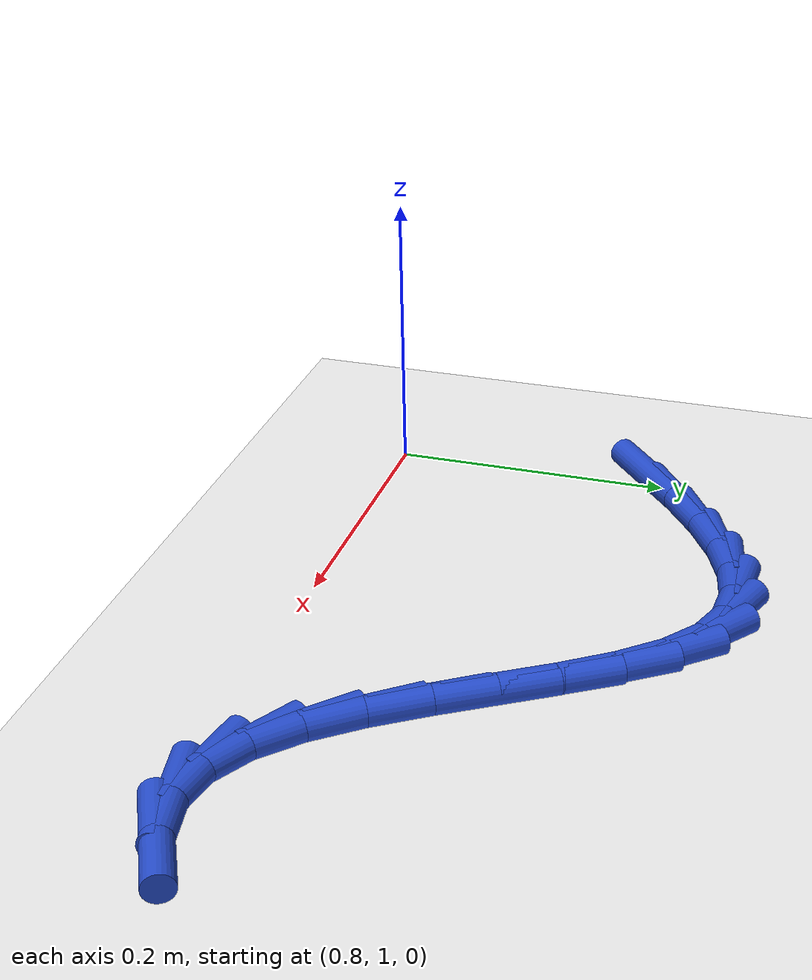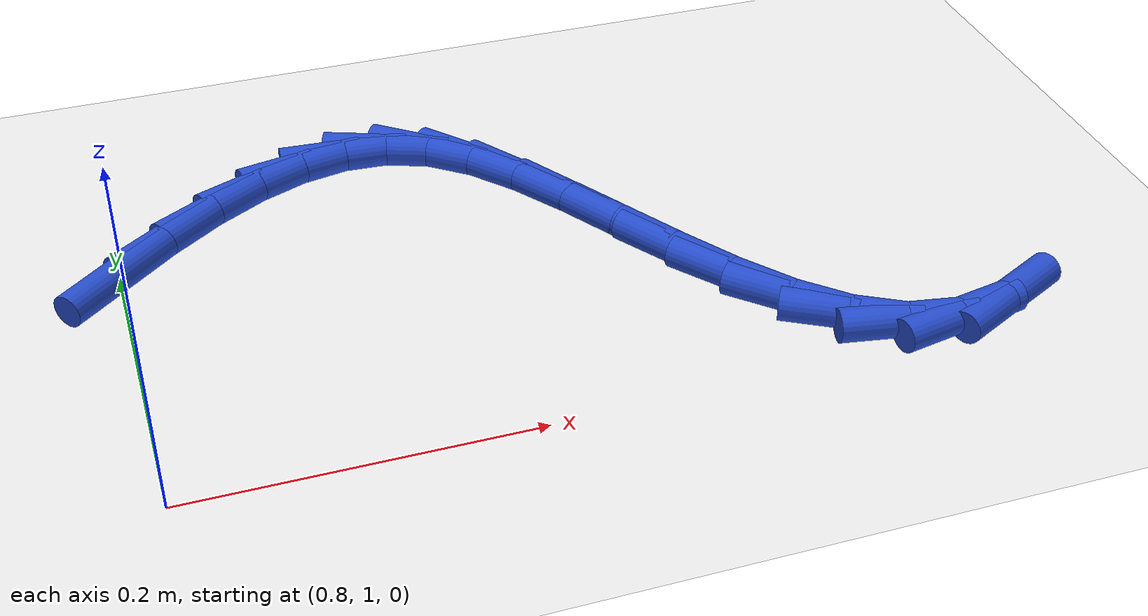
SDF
<sdf version="1.6">
 <world name="default">
  <model name="ground_plane">
   <static>1</static>
   <link name="link">
    <collision name="collision">
     <geometry><plane><normal>0 0 1</normal><size>100 100</size></plane></geometry>
     <surface><friction><ode><mu>100</mu><mu2>50</mu2></ode></friction></surface>
    </collision>
    <visual name="visual">
     <cast_shadows>0</cast_shadows>
     <geometry><plane><normal>0 0 1</normal><size>100 100</size></plane></geometry>
     <material>
      <script><uri>file://media/materials/scripts/gazebo.material</uri><name>Gazebo/WhiteGlow</name></script>
     </material>
    </visual>
   </link>
  </model>
  <model name="line">
   <link name="link_40">
    <pose>0.7985288992137948 1.189495089008094 0.01 0 1.57 0.7043038217005845</pose>
    <collision name="collision">
     <geometry><cylinder><radius>0.01</radius><length>0.08</length></cylinder></geometry>
    </collision>
    <visual name="visual">
     <material>
      <script><name>Gazebo/Blue</name><uri>file://media/materials/scripts/gazebo.material</uri></script>
     </material>
     <geometry><cylinder><radius>0.01</radius><length>0.08</length></cylinder></geometry>
    </visual>
   </link>
   <link name="link_41">
    <pose>0.8301139396176819 1.21633202483506 0.01 0 1.57 0.6338035461217338</pose>
    <collision name="collision">
     <geometry><cylinder><radius>0.01</radius><length>0.08</length></cylinder></geometry>
    </collision>
    <visual name="visual">
     <material>
      <script><name>Gazebo/Blue</name><uri>file://media/materials/scripts/gazebo.material</uri></script>
     </material>
     <geometry><cylinder><radius>0.01</radius><length>0.08</length></cylinder></geometry>
    </visual>
   </link>
   <link name="link_42">
    <pose>0.8612946401350379 1.2392484833767785 0.01 0 1.57 0.5351736500281211</pose>
    <collision name="collision">
     <geometry><cylinder><radius>0.01</radius><length>0.08</length></cylinder></geometry>
    </collision>
    <visual name="visual">
     <material>
      <script><name>Gazebo/Blue</name><uri>file://media/materials/scripts/gazebo.material</uri></script>
     </material>
     <geometry><cylinder><radius>0.01</radius><length>0.08</length></cylinder></geometry>
    </visual>
   </link>
   <link name="link_43">
    <pose>0.8918410023845367 1.2573590538874373 0.01 0 1.57 0.3962760851739158</pose>
    <collision name="collision">
     <geometry><cylinder><radius>0.01</radius><length>0.08</length></cylinder></geometry>
    </collision>
    <visual name="visual">
     <material>
      <script><name>Gazebo/Blue</name><uri>file://media/materials/scripts/gazebo.material</uri></script>
     </material>
     <geometry><cylinder><radius>0.01</radius><length>0.08</length></cylinder></geometry>
    </visual>
   </link>
   <link name="link_44">
    <pose>0.9215230279848526 1.269778325621226 0.01 0 1.57 0.20159714972996667</pose>
    <collision name="collision">
     <geometry><cylinder><radius>0.01</radius><length>0.08</length></cylinder></geometry>
    </collision>
    <visual name="visual">
     <material>
      <script><name>Gazebo/Blue</name><uri>file://media/materials/scripts/gazebo.material</uri></script>
     </material>
     <geometry><cylinder><radius>0.01</radius><length>0.08</length></cylinder></geometry>
    </visual>
   </link>
   <link name="link_45">
    <pose>0.9501107185546588 1.2756208878323316 0.01 0 1.57 -0.059334476204864005</pose>
    <collision name="collision">
     <geometry><cylinder><radius>0.01</radius><length>0.08</length></cylinder></geometry>
    </collision>
    <visual name="visual">
     <material>
      <script><name>Gazebo/Blue</name><uri>file://media/materials/scripts/gazebo.material</uri></script>
     </material>
     <geometry><cylinder><radius>0.01</radius><length>0.08</length></cylinder></geometry>
    </visual>
   </link>
   <link name="link_46">
    <pose>0.9773740757126297 1.2740013297749435 0.01 0 1.57 -0.3698480200925227</pose>
    <collision name="collision">
     <geometry><cylinder><radius>0.01</radius><length>0.08</length></cylinder></geometry>
    </collision>
    <visual name="visual">
     <material>
      <script><name>Gazebo/Blue</name><uri>file://media/materials/scripts/gazebo.material</uri></script>
     </material>
     <geometry><cylinder><radius>0.01</radius><length>0.08</length></cylinder></geometry>
    </visual>
   </link>
   <link name="link_47">
    <pose>1.0030831010774388 1.2640342407032494 0.01 0 1.57 -0.6677014612844325</pose>
    <collision name="collision">
     <geometry><cylinder><radius>0.01</radius><length>0.08</length></cylinder></geometry>
    </collision>
    <visual name="visual">
     <material>
      <script><name>Gazebo/Blue</name><uri>file://media/materials/scripts/gazebo.material</uri></script>
     </material>
     <geometry><cylinder><radius>0.01</radius><length>0.08</length></cylinder></geometry>
    </visual>
   </link>
   <link name="link_48">
    <pose>1.0270747734851597 1.24511633404198 0.01 0 1.57 -0.8643878954026266</pose>
    <collision name="collision">
     <geometry><cylinder><radius>0.01</radius><length>0.08</length></cylinder></geometry>
    </collision>
    <visual name="visual">
     <material>
      <script><name>Gazebo/Blue</name><uri>file://media/materials/scripts/gazebo.material</uri></script>
     </material>
     <geometry><cylinder><radius>0.01</radius><length>0.08</length></cylinder></geometry>
    </visual>
   </link>
   <link name="link_49">
    <pose>1.0496614308575394 1.2186466501706428 0.01 0 1.57 -0.9713565475624298</pose>
    <collision name="collision">
     <geometry><cylinder><radius>0.01</radius><length>0.08</length></cylinder></geometry>
    </collision>
    <visual name="visual">
     <material>
      <script><name>Gazebo/Blue</name><uri>file://media/materials/scripts/gazebo.material</uri></script>
     </material>
     <geometry><cylinder><radius>0.01</radius><length>0.08</length></cylinder></geometry>
    </visual>
   </link>
   <link name="link_50">
    <pose>1.071361017196465 1.186890291796655 0.01 0 1.57 -1.020569207023786</pose>
    <collision name="collision">
     <geometry><cylinder><radius>0.01</radius><length>0.08</length></cylinder></geometry>
    </collision>
    <visual name="visual">
     <material>
      <script><name>Gazebo/Blue</name><uri>file://media/materials/scripts/gazebo.material</uri></script>
     </material>
     <geometry><cylinder><radius>0.01</radius><length>0.08</length></cylinder></geometry>
    </visual>
   </link>
   <link name="link_51">
    <pose>1.0926922969543313 1.1521158175625679 0.01 0 1.57 -1.0269207747158406</pose>
    <collision name="collision">
     <geometry><cylinder><radius>0.01</radius><length>0.08</length></cylinder></geometry>
    </collision>
    <visual name="visual">
     <material>
      <script><name>Gazebo/Blue</name><uri>file://media/materials/scripts/gazebo.material</uri></script>
     </material>
     <geometry><cylinder><radius>0.01</radius><length>0.08</length></cylinder></geometry>
    </visual>
   </link>
   <link name="link_52">
    <pose>1.1141740345835331 1.116591786110933 0.01 0 1.57 -0.9934358311492614</pose>
    <collision name="collision">
     <geometry><cylinder><radius>0.01</radius><length>0.08</length></cylinder></geometry>
    </collision>
    <visual name="visual">
     <material>
      <script><name>Gazebo/Blue</name><uri>file://media/materials/scripts/gazebo.material</uri></script>
     </material>
     <geometry><cylinder><radius>0.01</radius><length>0.08</length></cylinder></geometry>
    </visual>
   </link>
   <link name="link_53">
    <pose>1.1363249945364646 1.0825867560843017 0.01 0 1.57 -0.9131339587827015</pose>
    <collision name="collision">
     <geometry><cylinder><radius>0.01</radius><length>0.08</length></cylinder></geometry>
    </collision>
    <visual name="visual">
     <material>
      <script><name>Gazebo/Blue</name><uri>file://media/materials/scripts/gazebo.material</uri></script>
     </material>
     <geometry><cylinder><radius>0.01</radius><length>0.08</length></cylinder></geometry>
    </visual>
   </link>
   <link name="link_54">
    <pose>1.1596639412655207 1.052369286125226 0.01 0 1.57 -0.7674281463106903</pose>
    <collision name="collision">
     <geometry><cylinder><radius>0.01</radius><length>0.08</length></cylinder></geometry>
    </collision>
    <visual name="visual">
     <material>
      <script><name>Gazebo/Blue</name><uri>file://media/materials/scripts/gazebo.material</uri></script>
     </material>
     <geometry><cylinder><radius>0.01</radius><length>0.08</length></cylinder></geometry>
    </visual>
   </link>
   <link name="link_55">
    <pose>1.1847096392230956 1.0282079348762572 0.01 0 1.57 -0.5261151114894413</pose>
    <collision name="collision">
     <geometry><cylinder><radius>0.01</radius><length>0.08</length></cylinder></geometry>
    </collision>
    <visual name="visual">
     <material>
      <script><name>Gazebo/Blue</name><uri>file://media/materials/scripts/gazebo.material</uri></script>
     </material>
     <geometry><cylinder><radius>0.01</radius><length>0.08</length></cylinder></geometry>
    </visual>
   </link>
   <link name="link_56">
    <pose>1.211980852861584 1.012371260979947 0.01 0 1.57 -0.17339602639009377</pose>
    <collision name="collision">
     <geometry><cylinder><radius>0.01</radius><length>0.08</length></cylinder></geometry>
    </collision>
    <visual name="visual">
     <material>
      <script><name>Gazebo/Blue</name><uri>file://media/materials/scripts/gazebo.material</uri></script>
     </material>
     <geometry><cylinder><radius>0.01</radius><length>0.08</length></cylinder></geometry>
    </visual>
   </link>
   <link name="link_57">
    <pose>1.2419883490674897 1.007115298918545 0.01 0 1.57 0.19095225686706108</pose>
    <collision name="collision">
     <geometry><cylinder><radius>0.01</radius><length>0.08</length></cylinder></geometry>
    </collision>
    <visual name="visual">
     <material>
      <script><name>Gazebo/Blue</name><uri>file://media/materials/scripts/gazebo.material</uri></script>
     </material>
     <geometry><cylinder><radius>0.01</radius><length>0.08</length></cylinder></geometry>
    </visual>
   </link>
   <link name="link_58">
    <pose>1.27440335185343 1.0133813619609107 0.01 0 1.57 0.4591046806819367</pose>
    <collision name="collision">
     <geometry><cylinder><radius>0.01</radius><length>0.08</length></cylinder></geometry>
    </collision>
    <visual name="visual">
     <material>
      <script><name>Gazebo/Blue</name><uri>file://media/materials/scripts/gazebo.material</uri></script>
     </material>
     <geometry><cylinder><radius>0.01</radius><length>0.08</length></cylinder></geometry>
    </visual>
   </link>
  </model>
 </world>
</sdf>
